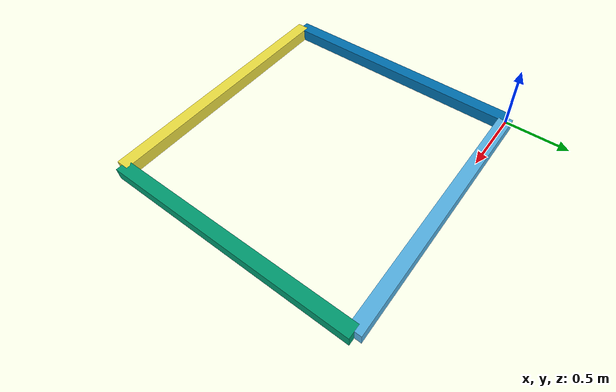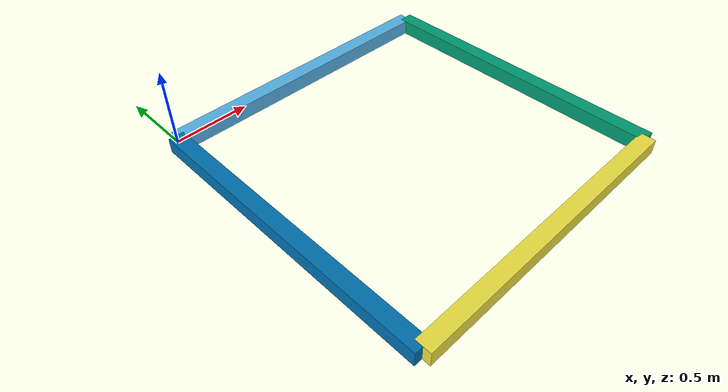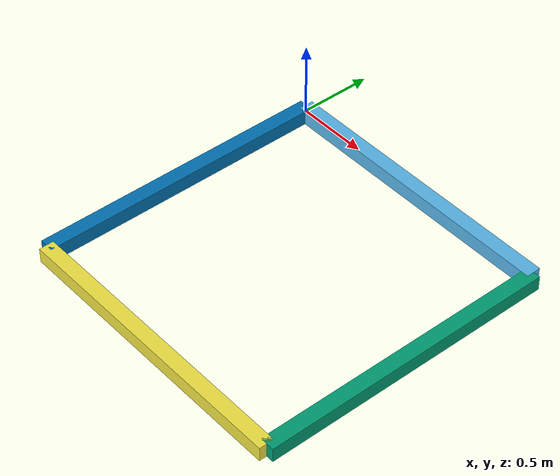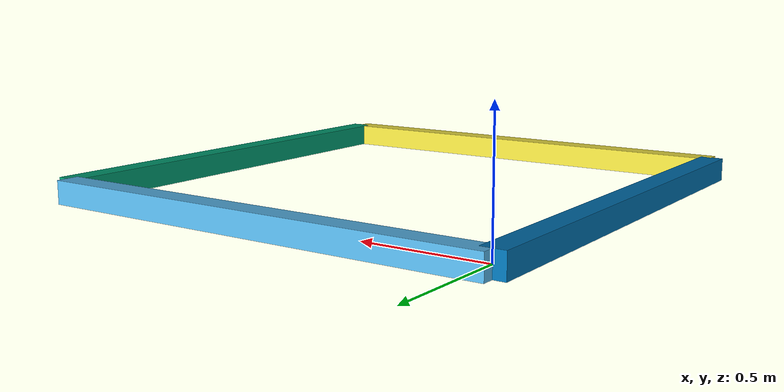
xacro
<?xml version="1.0"?>
<robot name="demo_model" xmlns:xacro="http://ros.org/wiki/xacro">

  <xacro:include filename="$(find demo_description)/urdf/common.xacro"/>
  <xacro:include filename="$(find demo_description)/urdf/closed_link.urdf.xacro"/>

  <link name="base_link"/>

  <xacro:closed_link parent="base_link">
    <origin xyz="0 0 0" rpy="0 0 0"/>
  </xacro:closed_link>

</robot>

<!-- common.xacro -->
<robot xmlns:xacro="http://ros.org/wiki/xacro">

  <xacro:property name="M_PI" value="3.14159274"/>

</robot>

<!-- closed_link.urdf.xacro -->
<robot xmlns:xacro="http://ros.org/wiki/xacro">

  <xacro:include filename="$(find demo_description)/urdf/common.xacro"/>
  <xacro:include filename="$(find demo_description)/urdf/closed_link.transmission.xacro"/>

  <xacro:macro name="closed_link" params="parent *joint_origin">

    <link name="link_A">
      <visual>
        <origin xyz="1 0 0" rpy="0 0 0"/>
        <geometry>
          <box size="2.0 0.1 0.1"/>
        </geometry>
      </visual>
      <collision>
        <origin xyz="1 0 0" rpy="0 0 0"/>
        <geometry>
          <box size="2. 0.1 0.1"/>
        </geometry>
      </collision>
    </link>
    <link name="link_B">
      <visual>
        <origin xyz="1 0 0" rpy="0 0 0"/>
        <geometry>
          <box size="2.0 0.1 0.1"/>
        </geometry>
      </visual>
      <collision>
        <origin xyz="1 0 0" rpy="0 0 0"/>
        <geometry>
          <box size="2. 0.1 0.1"/>
        </geometry>
      </collision>
    </link>
    <link name="link_C">
      <visual>
        <origin xyz="1 0 0" rpy="0 0 0"/>
        <geometry>
          <box size="2.0 0.1 0.1"/>
        </geometry>
      </visual>
      <collision>
        <origin xyz="1 0 0" rpy="0 0 0"/>
        <geometry>
          <box size="2. 0.1 0.1"/>
        </geometry>
      </collision>
    </link>
    <link name="link_D">
      <visual>
        <origin xyz="1 0 0" rpy="0 0 0"/>
        <geometry>
          <box size="2.0 0.1 0.1"/>
        </geometry>
      </visual>
      <collision>
        <origin xyz="1 0 0" rpy="0 0 0"/>
        <geometry>
          <box size="2. 0.1 0.1"/>
        </geometry>
      </collision>
    </link>

    <joint name="${parent}_to_link_A" type="fixed">
      <parent link="${parent}"/>
      <child link="link_A"/>
      <xacro:insert_block name="joint_origin"/>
    </joint>

    <joint name="link_A_to_link_B" type="revolute">
      <axis xyz="0 0 1"/>
      <limit lower="${-M_PI/4}" upper="${M_PI/4}" effort="100.0" velocity="${M_PI}"/>
      <dynamics damping="0.1"/>
      <parent link="link_A"/>
      <child link="link_B"/>
      <origin xyz="2 0 0" rpy="0 0 ${-M_PI/2}"/>
    </joint>
    <xacro:effort_trans joint="link_A_to_link_B"/>

    <joint name="link_B_to_link_C" type="continuous">
      <axis xyz="0 0 1"/>
      <parent link="link_B"/>
      <child link="link_C"/>
      <origin xyz="2 0 0" rpy="0 0 ${-M_PI/2}"/>
    </joint>
    <joint name="link_C_to_link_D" type="continuous">
      <axis xyz="0 0 1"/>
      <parent link="link_C"/>
      <child link="link_D"/>
      <origin xyz="2 0 0" rpy="0 0 ${-M_PI/2}"/>
    </joint>

  </xacro:macro>
</robot>
